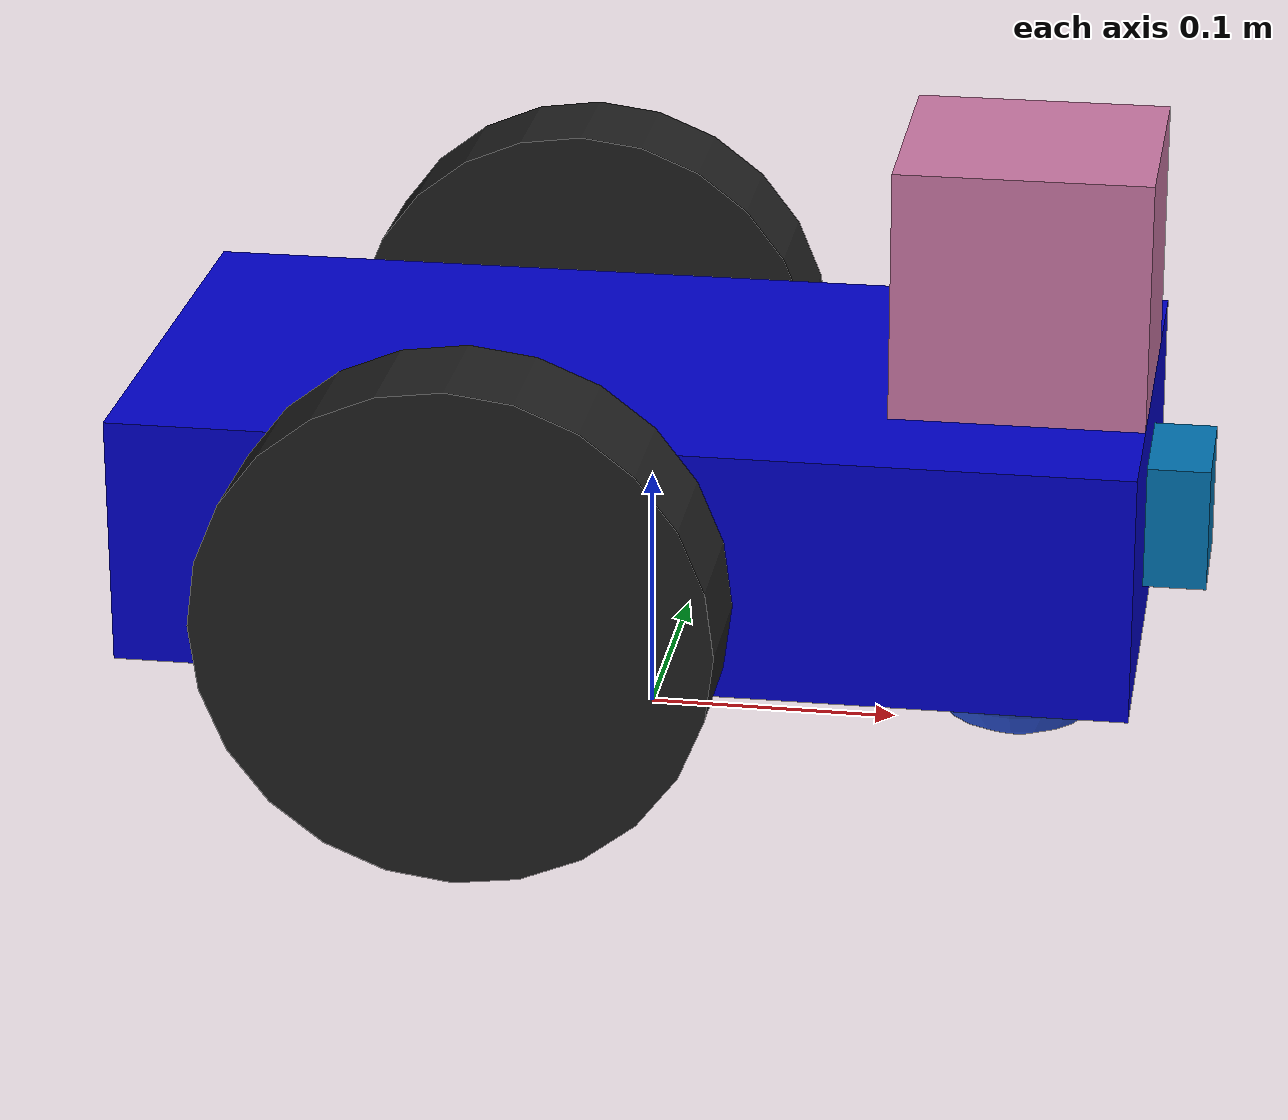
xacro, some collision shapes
<?xml version='1.0'?>

<robot name="my_robot" xmlns:xacro="http://www.ros.org/wiki/xacro">
<xacro:include filename="$(find my_robot)/urdf/my_robot.gazebo" />

  <material name="blue">
    <color rgba="0 0 0.8 1"/>
  </material>

  <material name="white">
    <color rgba="1 1 1 1"/>
  </material>

  <link name="robot_footprint"></link>

  <joint name="robot_footprint_joint" type="fixed">
    <origin xyz="0 0 0.1" rpy="0 0 0" />
    <parent link="robot_footprint"/>
    <child link="chassis" />
  </joint>

  <link name='chassis'>
    <pose>0 0 0.1 0 0 0</pose>

    <inertial>
      <mass value="15.0"/>
      <origin xyz="0.0 0 0" rpy=" 0 0 0"/>
      <inertia
          ixx="0.1" ixy="0" ixz="0"
          iyy="0.1" iyz="0"
          izz="0.1"
      />
    </inertial>

    <collision name='collision'>
      <origin xyz="0 0 0" rpy=" 0 0 0"/>
      <geometry>
        <box size=".4 .2 .1"/>
      </geometry>
    </collision>

    <visual name='chassis_visual'>
      <origin xyz="0 0 0" rpy=" 0 0 0"/>
      <geometry>
        <box size=".4 .2 .1"/>
      </geometry>
      <material name="blue"/>
    </visual>

    <collision name='back_caster_collision'>
      <origin xyz="-0.15 0 -0.05" rpy=" 0 0 0"/>
      <geometry>
        <sphere radius="0.05"/>
      </geometry>
    </collision>

    <visual name='back_caster_visual'>
      <origin xyz="-0.15 0 -0.05" rpy=" 0 0 0"/>
      <geometry>
        <sphere radius="0.05"/>
      </geometry>
    </visual>

    <collision name='front_caster_collision'>
      <origin xyz="0.15 0 -0.05" rpy=" 0 0 0"/>
      <geometry>
        <sphere radius="0.05"/>
      </geometry>
    </collision>

    <visual name='front_caster_visual'>
      <origin xyz="0.15 0 -0.05" rpy=" 0 0 0"/>
      <geometry>
        <sphere radius="0.05"/>
      </geometry>
    </visual>

  </link>

  <link name='left_wheel'>
    <pose>0 0 0.1 0 0 0</pose>

    <inertial>
      <mass value="5.0"/>
      <origin xyz="0.0 0 0" rpy=" 0 1.5707 1.5707"/>
      <inertia
          ixx="0.5" ixy="0" ixz="0"
          iyy="0.5" iyz="0"
          izz="0.5"
      />
    </inertial>

    <collision name='left_wheel_collision'>
      <origin xyz="0 0 0" rpy=" 0 1.5707 1.5707"/>
      <geometry>
        <cylinder length="0.05" radius="0.1"/>
      </geometry>
    </collision>

    <visual name='left_wheel_visual'>
      <origin xyz="0 0 0" rpy=" 0 1.5707 1.5707"/>
      <geometry>
        <cylinder length="0.05" radius="0.1"/>
      </geometry>
    </visual>

  </link>

  <link name='right_wheel'>
    <pose>0 0 0.1 0 0 0</pose>

    <inertial>
      <mass value="5.0"/>
      <origin xyz="0.0 0 0" rpy=" 0 1.5707 1.5707"/>
      <inertia
          ixx="0.5" ixy="0" ixz="0"
          iyy="0.5" iyz="0"
          izz="0.5"
      />
    </inertial>

    <collision name='right_wheel_collision'>
      <origin xyz="0 0 0" rpy=" 0 1.5707 1.5707"/>
      <geometry>
        <cylinder length="0.05" radius="0.1"/>
      </geometry>
    </collision>

    <visual name='right_wheel_visual'>
      <origin xyz="0 0 0" rpy=" 0 1.5707 1.5707"/>
      <geometry>
        <cylinder length="0.05" radius="0.1"/>
      </geometry>
    </visual>

  </link>

<!-- SENSORS -->

  <link name='camera'>
    <pose>0 0 0 0 0 0</pose>

    <inertial>
      <mass value="0.1"/>
      <origin xyz="0.05 0.05 0.05" rpy="0 0 0"/>
      <inertia
          ixx="1e-6" ixy="0" ixz="0"
          iyy="1e-6" iyz="0"
          izz="1e-6"
      />
    </inertial>

    <collision name='camera_collision'>
      <origin xyz="0 0 0" rpy="0 0 0"/>
      <geometry>
        <box size="0.05 0.05 0.05"/>
      </geometry>
    </collision>

    <visual name='camera_visual'>
      <origin xyz="0 0 0" rpy="0 0 0"/>
      <geometry>
        <box size="0.05 0.05 0.05"/>
      </geometry>
    </visual>

  </link>

  <link name="camera_link_optical">
  </link>

  <link name='hokuyo'> <!-- LIDAR -->
    <pose>0 0 0 0 0 0</pose>

    <inertial>
      <mass value="1e-5"/>
      <origin xyz="0 0 0" rpy="0 0 0"/>
      <inertia
          ixx="1e-6" ixy="0" ixz="0"
          iyy="1e-6" iyz="0"
          izz="1e-6"
      />
    </inertial>

    <collision name='LIDAR_collision'>
      <origin xyz="0 0 0" rpy=" 0 0 0"/>
      <geometry>
        <box size="0.1 0.1 0.1"/>
      </geometry>
    </collision>

    <visual name='LIDAR_visual'>
      <origin xyz="0 0 0" rpy="0 0 0"/>
      <geometry>
        <mesh filename="package://my_robot/meshes/hokuyo.dae"/>
      </geometry>
    </visual>

  </link>

<!-- JOINTS -->

 <joint type="continuous" name="left_wheel_hinge">
    <origin xyz="-0.05 0.15 0" rpy="0 0 0"/>
    <child link="left_wheel"/>
    <parent link="chassis"/>
    <axis xyz="0 1 0" rpy="0 0 0"/>
    <limit effort="100000" velocity="1000"/>
    <dynamics damping="1.0" friction="1.0"/>
 </joint>

 <joint type="continuous" name="right_wheel_hinge">
    <origin xyz="-0.05 -0.15 0" rpy="0 0 0"/>
    <child link="right_wheel"/>
    <parent link="chassis"/>
    <axis xyz="0 1 0" rpy="0 0 0"/>
    <limit effort="100000" velocity="1000"/>
    <dynamics damping="1.0" friction="1.0"/>
 </joint>

 <joint type="fixed" name="camera_joint">
    <origin xyz="0.2 0 0" rpy="0 0 0"/>
    <child link="camera"/>
    <parent link="chassis"/>
    <axis xyz="0 1 0" rpy="0 0 0"/>
 </joint>

  <joint name="camera_optical_joint" type="fixed">
    <origin xyz="0 0 0" rpy="-1.5707 0 -1.5707"/>
    <parent link="camera"/>
    <child link="camera_link_optical"/>
  </joint>

 <joint type="fixed" name="hokuyo_joint">
    <origin xyz="0.15 0 0.1" rpy="0 0 0"/>
    <child link="hokuyo"/>
    <parent link="chassis"/>
    <axis xyz="0 1 0" rpy="0 0 0"/>
 </joint>

 <gazebo reference="chassis">
    <material>Gazebo/Blue</material>
 </gazebo>

 <gazebo reference="right_wheel">
    <material>Gazebo/Black</material>
 </gazebo>

 <gazebo reference="left_wheel">
   <material>Gazebo/Black</material>
 </gazebo>

</robot>
